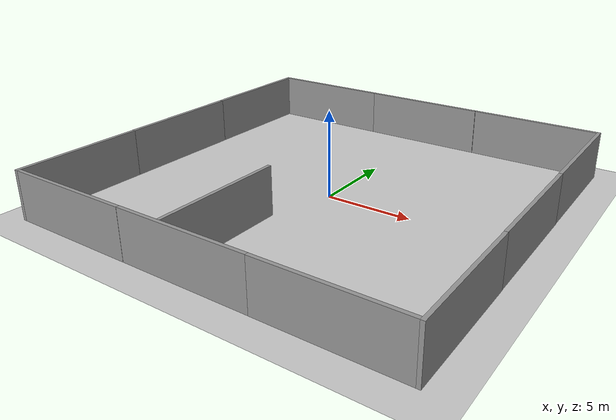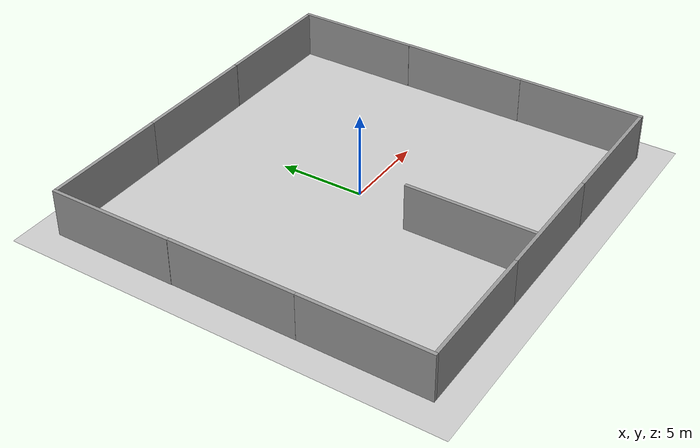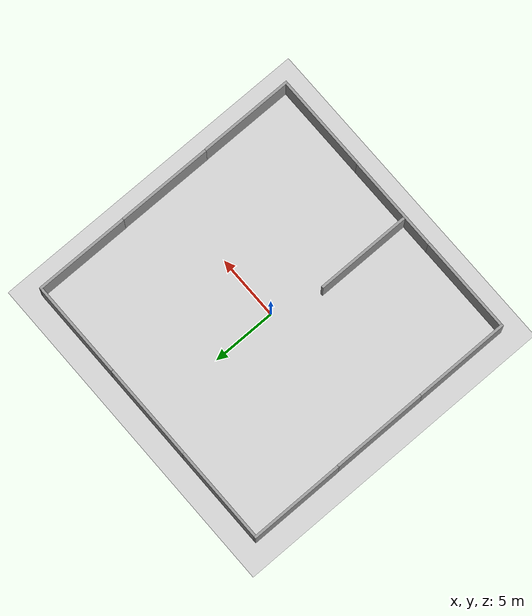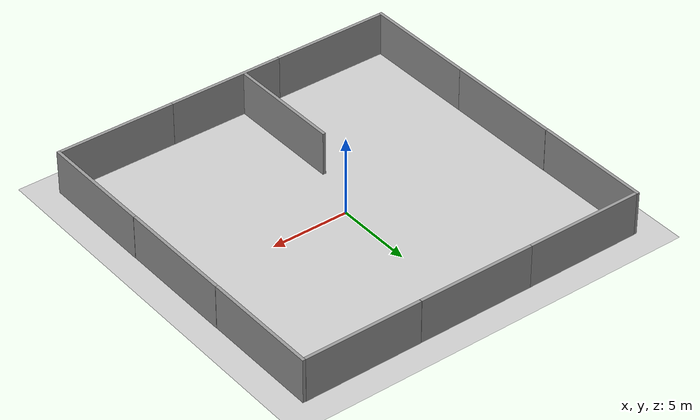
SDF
<sdf version="1.6">
 <world name="default">
  <light name="sun" type="directional">
   <pose>0 0 10 0 -0 0</pose>
   <diffuse>0.8 0.8 0.8 1</diffuse>
   <specular>0.2 0.2 0.2 1</specular>
   <attenuation>
    <range>1000</range>
    <constant>0.9</constant>
    <linear>0.01</linear>
    <quadratic>0.001</quadratic>
   </attenuation>
   <direction>-0.5 0.5 -1</direction>
  </light>
  <gravity>0 0 -9.8</gravity>
  <magnetic_field>6e-06 2.3e-05 -4.2e-05</magnetic_field>
  <atmosphere type="adiabatic"/>
  <physics name="default_physics" default="0" type="ode">
   <max_step_size>0.01</max_step_size>
   <real_time_factor>1</real_time_factor>
   <real_time_update_rate>100</real_time_update_rate>
   <ode>
    <solver>
     <type>quick</type>
     <iters>100</iters>
     <precon_iters>0</precon_iters>
     <sor>1</sor>
     <use_dynamic_moi_rescaling>0</use_dynamic_moi_rescaling>
    </solver>
    <constraints>
     <cfm>0</cfm>
     <erp>0.5</erp>
     <contact_max_correcting_vel>1000</contact_max_correcting_vel>
     <contact_surface_layer>0</contact_surface_layer>
    </constraints>
   </ode>
  </physics>
  <scene><ambient>0.4 0.4 0.4 1</ambient><background>0.7 0.7 0.7 1</background><shadows>0</shadows></scene>
  <spherical_coordinates>
   <surface_model>EARTH_WGS84</surface_model>
   <latitude_deg>0</latitude_deg>
   <longitude_deg>0</longitude_deg>
   <elevation>0</elevation>
   <heading_deg>0</heading_deg>
  </spherical_coordinates>
  <light name="user_point_light_0" type="point">
   <pose>3.54976 1.43038 1 0 -0 0</pose>
   <diffuse>0.5 0.5 0.5 1</diffuse>
   <specular>0.1 0.1 0.1 1</specular>
   <attenuation>
    <range>20</range>
    <constant>0.5</constant>
    <linear>0.01</linear>
    <quadratic>0.001</quadratic>
   </attenuation>
   <cast_shadows>0</cast_shadows>
   <direction>0 0 -1</direction>
  </light>
  <light name="user_point_light_0_clone" type="point">
   <pose>-8.02842 6.22549 7.18798 0 -0 0</pose>
   <diffuse>0.5 0.5 0.5 1</diffuse>
   <specular>0.1 0.1 0.1 1</specular>
   <direction>0 0 -1</direction>
   <attenuation>
    <range>20</range>
    <constant>0.5</constant>
    <linear>0.01</linear>
    <quadratic>0.001</quadratic>
   </attenuation>
   <cast_shadows>0</cast_shadows>
  </light>
  <audio><device>default</device></audio>
  <model name="hska_ground_plane">
   <static>1</static>
   <link name="link">
    <collision name="collision">
     <geometry><plane><normal>0 0 1</normal><size>100 100</size></plane></geometry>
     <surface><friction><ode><mu>100</mu><mu2>50</mu2></ode></friction></surface>
    </collision>
    <visual name="visual">
     <cast_shadows>0</cast_shadows>
     <geometry><plane><normal>0 0 1</normal><size>100 100</size></plane></geometry>
     <material>
      <script>
       <uri>model://hska_ground_plane/materials/scripts</uri>
       <uri>model://hska_ground_plane/materials/textures/</uri>
       <name>hskaGroundPlane/Image</name>
      </script>
     </material>
    </visual>
   </link>
   <pose>15.6163 -0.783534 0 0 -0 0</pose>
  </model>
  <model name="grey_wall">
   <static>1</static>
   <link name="link">
    <pose>0 0 1.4 0 -0 0</pose>
    <collision name="collision"><geometry><box><size>7.5 0.2 2.8</size></box></geometry></collision>
    <visual name="visual">
     <cast_shadows>0</cast_shadows>
     <geometry><box><size>7.5 0.2 2.8</size></box></geometry>
     <material>
      <script>
       <uri>model://grey_wall/materials/scripts</uri>
       <uri>model://grey_wall/materials/textures</uri>
       <name>vrc/grey_wall</name>
      </script>
     </material>
    </visual>
   </link>
   <pose>7.50461 11.1289 0 0 -0 0</pose>
  </model>
  <model name="grey_wall_0">
   <static>1</static>
   <link name="link">
    <pose>0 0 1.4 0 -0 0</pose>
    <collision name="collision"><geometry><box><size>7.5 0.2 2.8</size></box></geometry></collision>
    <visual name="visual">
     <cast_shadows>0</cast_shadows>
     <geometry><box><size>7.5 0.2 2.8</size></box></geometry>
     <material>
      <script>
       <uri>model://grey_wall/materials/scripts</uri>
       <uri>model://grey_wall/materials/textures</uri>
       <name>vrc/grey_wall</name>
      </script>
     </material>
    </visual>
   </link>
   <pose>-0.014914 11.1257 0 0 -0 0</pose>
  </model>
  <model name="grey_wall_1">
   <static>1</static>
   <link name="link">
    <pose>0 0 1.4 0 -0 0</pose>
    <collision name="collision"><geometry><box><size>7.5 0.2 2.8</size></box></geometry></collision>
    <visual name="visual">
     <cast_shadows>0</cast_shadows>
     <geometry><box><size>7.5 0.2 2.8</size></box></geometry>
     <material>
      <script>
       <uri>model://grey_wall/materials/scripts</uri>
       <uri>model://grey_wall/materials/textures</uri>
       <name>vrc/grey_wall</name>
      </script>
     </material>
    </visual>
   </link>
   <pose>-7.49539 11.125 0 0 -0 0</pose>
  </model>
  <model name="grey_wall_2">
   <static>1</static>
   <link name="link">
    <pose>0 0 1.4 0 -0 0</pose>
    <collision name="collision"><geometry><box><size>7.5 0.2 2.8</size></box></geometry></collision>
    <visual name="visual">
     <cast_shadows>0</cast_shadows>
     <geometry><box><size>7.5 0.2 2.8</size></box></geometry>
     <material>
      <script>
       <uri>model://grey_wall/materials/scripts</uri>
       <uri>model://grey_wall/materials/textures</uri>
       <name>vrc/grey_wall</name>
      </script>
     </material>
    </visual>
   </link>
   <pose>-11.3454 7.46714 0 0 -0 1.5708</pose>
  </model>
  <model name="grey_wall_3">
   <static>1</static>
   <link name="link">
    <pose>0 0 1.4 0 -0 0</pose>
    <collision name="collision"><geometry><box><size>7.5 0.2 2.8</size></box></geometry></collision>
    <visual name="visual">
     <cast_shadows>0</cast_shadows>
     <geometry><box><size>7.5 0.2 2.8</size></box></geometry>
     <material>
      <script>
       <uri>model://grey_wall/materials/scripts</uri>
       <uri>model://grey_wall/materials/textures</uri>
       <name>vrc/grey_wall</name>
      </script>
     </material>
    </visual>
   </link>
   <pose>-11.3289 -0.032856 0 0 -0 1.5708</pose>
  </model>
  <model name="grey_wall_4">
   <static>1</static>
   <link name="link">
    <pose>0 0 1.4 0 -0 0</pose>
    <collision name="collision"><geometry><box><size>7.5 0.2 2.8</size></box></geometry></collision>
    <visual name="visual">
     <cast_shadows>0</cast_shadows>
     <geometry><box><size>7.5 0.2 2.8</size></box></geometry>
     <material>
      <script>
       <uri>model://grey_wall/materials/scripts</uri>
       <uri>model://grey_wall/materials/textures</uri>
       <name>vrc/grey_wall</name>
      </script>
     </material>
    </visual>
   </link>
   <pose>-11.3261 -7.53286 0 0 -0 1.5708</pose>
  </model>
  <model name="grey_wall_5">
   <static>1</static>
   <link name="link">
    <pose>0 0 1.4 0 -0 0</pose>
    <collision name="collision"><geometry><box><size>7.5 0.2 2.8</size></box></geometry></collision>
    <visual name="visual">
     <cast_shadows>0</cast_shadows>
     <geometry><box><size>7.5 0.2 2.8</size></box></geometry>
     <material>
      <script>
       <uri>model://grey_wall/materials/scripts</uri>
       <uri>model://grey_wall/materials/textures</uri>
       <name>vrc/grey_wall</name>
      </script>
     </material>
    </visual>
   </link>
   <pose>-7.47612 -11.1824 0 0 -0 0</pose>
  </model>
  <model name="grey_wall_6">
   <static>1</static>
   <link name="link">
    <pose>0 0 1.4 0 -0 0</pose>
    <collision name="collision"><geometry><box><size>7.5 0.2 2.8</size></box></geometry></collision>
    <visual name="visual">
     <cast_shadows>0</cast_shadows>
     <geometry><box><size>7.5 0.2 2.8</size></box></geometry>
     <material>
      <script>
       <uri>model://grey_wall/materials/scripts</uri>
       <uri>model://grey_wall/materials/textures</uri>
       <name>vrc/grey_wall</name>
      </script>
     </material>
    </visual>
   </link>
   <pose>0.023876 -11.1764 0 0 -0 0</pose>
  </model>
  <model name="grey_wall_7">
   <static>1</static>
   <link name="link">
    <pose>0 0 1.4 0 -0 0</pose>
    <collision name="collision"><geometry><box><size>7.5 0.2 2.8</size></box></geometry></collision>
    <visual name="visual">
     <cast_shadows>0</cast_shadows>
     <geometry><box><size>7.5 0.2 2.8</size></box></geometry>
     <material>
      <script>
       <uri>model://grey_wall/materials/scripts</uri>
       <uri>model://grey_wall/materials/textures</uri>
       <name>vrc/grey_wall</name>
      </script>
     </material>
    </visual>
   </link>
   <pose>7.52388 -11.1813 0 0 -0 0</pose>
  </model>
  <model name="grey_wall_8">
   <static>1</static>
   <link name="link">
    <pose>0 0 1.4 0 -0 0</pose>
    <collision name="collision"><geometry><box><size>7.5 0.2 2.8</size></box></geometry></collision>
    <visual name="visual">
     <cast_shadows>0</cast_shadows>
     <geometry><box><size>7.5 0.2 2.8</size></box></geometry>
     <material>
      <script>
       <uri>model://grey_wall/materials/scripts</uri>
       <uri>model://grey_wall/materials/textures</uri>
       <name>vrc/grey_wall</name>
      </script>
     </material>
    </visual>
   </link>
   <pose>11.3478 7.46789 0 0 0 -1.5708</pose>
  </model>
  <model name="grey_wall_9">
   <static>1</static>
   <link name="link">
    <pose>0 0 1.4 0 -0 0</pose>
    <collision name="collision"><geometry><box><size>7.5 0.2 2.8</size></box></geometry></collision>
    <visual name="visual">
     <cast_shadows>0</cast_shadows>
     <geometry><box><size>7.5 0.2 2.8</size></box></geometry>
     <material>
      <script>
       <uri>model://grey_wall/materials/scripts</uri>
       <uri>model://grey_wall/materials/textures</uri>
       <name>vrc/grey_wall</name>
      </script>
     </material>
    </visual>
   </link>
   <pose>11.3615 -0.032106 0 0 0 -1.5708</pose>
  </model>
  <model name="grey_wall_10">
   <static>1</static>
   <link name="link">
    <pose>0 0 1.4 0 -0 0</pose>
    <collision name="collision"><geometry><box><size>7.5 0.2 2.8</size></box></geometry></collision>
    <visual name="visual">
     <cast_shadows>0</cast_shadows>
     <geometry><box><size>7.5 0.2 2.8</size></box></geometry>
     <material>
      <script>
       <uri>model://grey_wall/materials/scripts</uri>
       <uri>model://grey_wall/materials/textures</uri>
       <name>vrc/grey_wall</name>
      </script>
     </material>
    </visual>
   </link>
   <pose>11.3739 -7.53211 0 0 0 -1.5708</pose>
  </model>
  <model name="grey_wall_11">
   <static>1</static>
   <link name="link">
    <pose>0 0 1.4 0 -0 0</pose>
    <collision name="collision"><geometry><box><size>7.5 0.2 2.8</size></box></geometry></collision>
    <visual name="visual">
     <cast_shadows>0</cast_shadows>
     <geometry><box><size>7.5 0.2 2.8</size></box></geometry>
     <material>
      <script>
       <uri>model://grey_wall/materials/scripts</uri>
       <uri>model://grey_wall/materials/textures</uri>
       <name>vrc/grey_wall</name>
      </script>
     </material>
    </visual>
   </link>
   <pose>-1.25945 -7.3264 0 0 0 -1.5708</pose>
  </model>
 </world>
</sdf>
